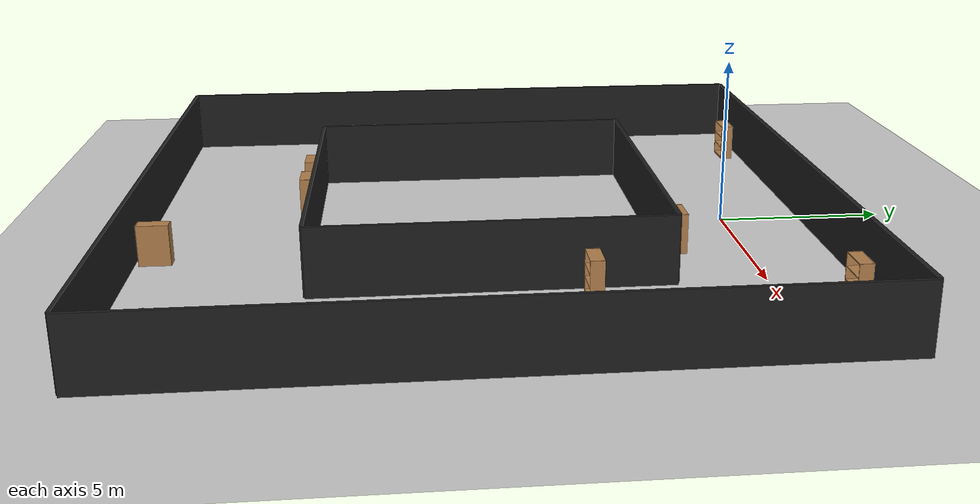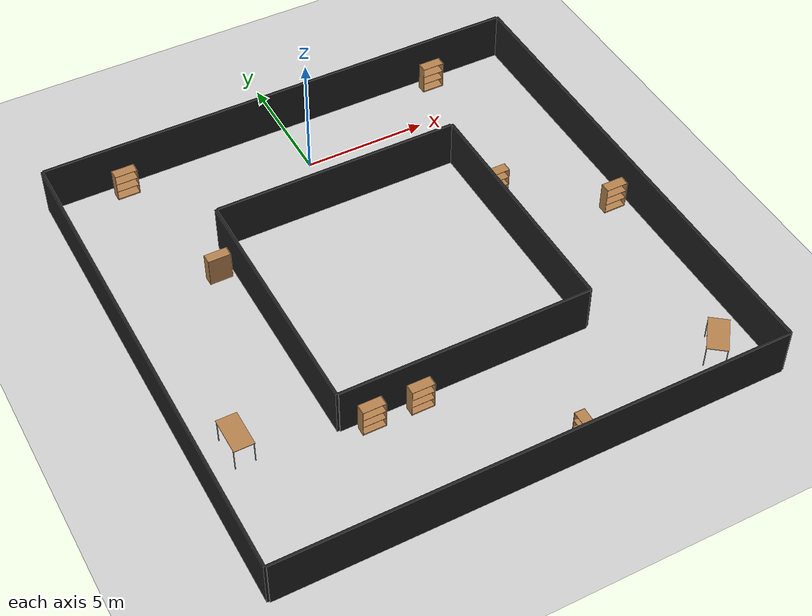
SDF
<sdf version="1.6">
 <world name="default">
  <light name="sun" type="directional">
   <pose>0 0 10 0 -0 0</pose>
   <diffuse>0.8 0.8 0.8 1</diffuse>
   <specular>0.2 0.2 0.2 1</specular>
   <attenuation>
    <range>1000</range>
    <constant>0.9</constant>
    <linear>0.01</linear>
    <quadratic>0.001</quadratic>
   </attenuation>
   <direction>-0.5 0.1 -0.9</direction>
  </light>
  <model name="ground_plane">
   <static>1</static>
   <link name="link">
    <collision name="collision">
     <geometry><plane><normal>0 0 1</normal><size>200 200</size></plane></geometry>
     <surface>
      <contact><collide_bitmask>65535</collide_bitmask></contact>
      <friction><ode><mu>100</mu><mu2>50</mu2></ode></friction>
     </surface>
    </collision>
    <visual name="visual">
     <cast_shadows>0</cast_shadows>
     <geometry><plane><normal>0 0 1</normal><size>200 200</size></plane></geometry>
     <material>
      <script><uri>file://media/materials/scripts/gazebo.material</uri><name>Gazebo/Grey</name></script>
     </material>
    </visual>
   </link>
  </model>
  <gravity>0 0 -9.8</gravity>
  <magnetic_field>6e-06 2.3e-05 -4.2e-05</magnetic_field>
  <atmosphere type="adiabatic"/>
  <physics name="default_physics" default="0" type="ode">
   <max_step_size>0.001</max_step_size>
   <real_time_factor>1</real_time_factor>
   <real_time_update_rate>1000</real_time_update_rate>
  </physics>
  <scene><ambient>0.4 0.4 0.4 1</ambient><background>0.7 0.7 0.7 1</background><shadows>1</shadows></scene>
  <spherical_coordinates>
   <surface_model>EARTH_WGS84</surface_model>
   <latitude_deg>0</latitude_deg>
   <longitude_deg>0</longitude_deg>
   <elevation>0</elevation>
   <heading_deg>0</heading_deg>
  </spherical_coordinates>
  <model name="wall_1">
   <pose>0 -2.5 1 0 0 0</pose>
   <link name="link">
    <collision name="collision"><geometry><box><size>10 0.1 2</size></box></geometry></collision>
    <visual name="visual">
     <geometry><box><size>10 0.1 2</size></box></geometry>
     <material>
      <script><name>Gazebo/Black</name><uri>file://media/materials/scripts/gazebo.material</uri></script>
     </material>
    </visual>
   </link>
  </model>
  <model name="wall_2">
   <pose>0 2.5 1 0 0 0</pose>
   <link name="link">
    <collision name="collision"><geometry><box><size>20 0.1 2</size></box></geometry></collision>
    <visual name="visual">
     <geometry><box><size>20 0.1 2</size></box></geometry>
     <material>
      <script><name>Gazebo/Black</name><uri>file://media/materials/scripts/gazebo.material</uri></script>
     </material>
    </visual>
   </link>
  </model>
  <model name="wall_3">
   <pose>-5.05 -7.5 1 0 0 1.57079632679</pose>
   <link name="link">
    <collision name="collision"><geometry><box><size>10 0.1 2</size></box></geometry></collision>
    <visual name="visual">
     <geometry><box><size>10 0.1 2</size></box></geometry>
     <material>
      <script><name>Gazebo/Black</name><uri>file://media/materials/scripts/gazebo.material</uri></script>
     </material>
    </visual>
   </link>
  </model>
  <model name="wall_4">
   <pose>-10.05 -7.5 1 0 0 1.57079632679</pose>
   <link name="link">
    <collision name="collision"><geometry><box><size>20 0.1 2</size></box></geometry></collision>
    <visual name="visual">
     <geometry><box><size>20 0.1 2</size></box></geometry>
     <material>
      <script><name>Gazebo/Black</name><uri>file://media/materials/scripts/gazebo.material</uri></script>
     </material>
    </visual>
   </link>
  </model>
  <model name="wall_5">
   <pose>0 -12.5 1 0 0 0</pose>
   <link name="link">
    <collision name="collision"><geometry><box><size>10 0.1 2</size></box></geometry></collision>
    <visual name="visual">
     <geometry><box><size>10 0.1 2</size></box></geometry>
     <material>
      <script><name>Gazebo/Black</name><uri>file://media/materials/scripts/gazebo.material</uri></script>
     </material>
    </visual>
   </link>
  </model>
  <model name="wall_6">
   <pose>0 -17.5 1 0 0 0</pose>
   <link name="link">
    <collision name="collision"><geometry><box><size>20 0.1 2</size></box></geometry></collision>
    <visual name="visual">
     <geometry><box><size>20 0.1 2</size></box></geometry>
     <material>
      <script><name>Gazebo/Black</name><uri>file://media/materials/scripts/gazebo.material</uri></script>
     </material>
    </visual>
   </link>
  </model>
  <model name="wall_7">
   <pose>5.05 -7.5 1 0 0 1.57079632679</pose>
   <link name="link">
    <collision name="collision"><geometry><box><size>10 0.1 2</size></box></geometry></collision>
    <visual name="visual">
     <geometry><box><size>10 0.1 2</size></box></geometry>
     <material>
      <script><name>Gazebo/Black</name><uri>file://media/materials/scripts/gazebo.material</uri></script>
     </material>
    </visual>
   </link>
  </model>
  <model name="wall_8">
   <pose>10.05 -7.5 1 0 0 1.57079632679</pose>
   <link name="link">
    <collision name="collision"><geometry><box><size>20 0.1 2</size></box></geometry></collision>
    <visual name="visual">
     <geometry><box><size>20 0.1 2</size></box></geometry>
     <material>
      <script><name>Gazebo/Black</name><uri>file://media/materials/scripts/gazebo.material</uri></script>
     </material>
    </visual>
   </link>
  </model>
  <model name="bookshelf">
   <static>1</static>
   <link name="link">
    <inertial><mass>1</mass></inertial>
    <collision name="back">
     <pose>0 0.005 0.6 0 -0 0</pose>
     <geometry><box><size>0.9 0.01 1.2</size></box></geometry>
    </collision>
    <visual name="visual1">
     <pose>0 0.005 0.6 0 -0 0</pose>
     <geometry><box><size>0.9 0.01 1.2</size></box></geometry>
     <material>
      <script><uri>file://media/materials/scripts/gazebo.material</uri><name>Gazebo/Wood</name></script>
     </material>
    </visual>
    <collision name="left_side">
     <pose>0.45 -0.195 0.6 0 -0 0</pose>
     <geometry><box><size>0.02 0.4 1.2</size></box></geometry>
    </collision>
    <visual name="visual2">
     <pose>0.45 -0.195 0.6 0 -0 0</pose>
     <geometry><box><size>0.02 0.4 1.2</size></box></geometry>
     <material>
      <script><uri>file://media/materials/scripts/gazebo.material</uri><name>Gazebo/Wood</name></script>
     </material>
    </visual>
    <collision name="right_side">
     <pose>-0.45 -0.195 0.6 0 -0 0</pose>
     <geometry><box><size>0.02 0.4 1.2</size></box></geometry>
    </collision>
    <visual name="visual3">
     <pose>-0.45 -0.195 0.6 0 -0 0</pose>
     <geometry><box><size>0.02 0.4 1.2</size></box></geometry>
     <material>
      <script><uri>file://media/materials/scripts/gazebo.material</uri><name>Gazebo/Wood</name></script>
     </material>
    </visual>
    <collision name="bottom">
     <pose>0 -0.195 0.03 0 -0 0</pose>
     <geometry><box><size>0.88 0.4 0.06</size></box></geometry>
    </collision>
    <visual name="visual4">
     <pose>0 -0.195 0.03 0 -0 0</pose>
     <geometry><box><size>0.88 0.4 0.06</size></box></geometry>
     <material>
      <script><uri>file://media/materials/scripts/gazebo.material</uri><name>Gazebo/Wood</name></script>
     </material>
    </visual>
    <collision name="top">
     <pose>0 -0.195 1.19 0 -0 0</pose>
     <geometry><box><size>0.88 0.4 0.02</size></box></geometry>
    </collision>
    <visual name="visual5">
     <pose>0 -0.195 1.19 0 -0 0</pose>
     <geometry><box><size>0.88 0.4 0.02</size></box></geometry>
     <material>
      <script><uri>file://media/materials/scripts/gazebo.material</uri><name>Gazebo/Wood</name></script>
     </material>
    </visual>
    <collision name="low_shelf">
     <pose>0 -0.195 0.43 0 -0 0</pose>
     <geometry><box><size>0.88 0.4 0.02</size></box></geometry>
    </collision>
    <visual name="visual6">
     <pose>0 -0.195 0.43 0 -0 0</pose>
     <geometry><box><size>0.88 0.4 0.02</size></box></geometry>
     <material>
      <script><uri>file://media/materials/scripts/gazebo.material</uri><name>Gazebo/Wood</name></script>
     </material>
    </visual>
    <collision name="high_shelf">
     <pose>0 -0.195 0.8 0 -0 0</pose>
     <geometry><box><size>0.88 0.4 0.02</size></box></geometry>
    </collision>
    <visual name="visual7">
     <pose>0 -0.195 0.8 0 -0 0</pose>
     <geometry><box><size>0.88 0.4 0.02</size></box></geometry>
     <material>
      <script><uri>file://media/materials/scripts/gazebo.material</uri><name>Gazebo/Wood</name></script>
     </material>
    </visual>
   </link>
   <pose>-7.03922 2.11059 0 0 -0 0</pose>
  </model>
  <model name="bookshelf_0">
   <static>1</static>
   <link name="link">
    <inertial><mass>1</mass></inertial>
    <collision name="back">
     <pose>0 0.005 0.6 0 -0 0</pose>
     <geometry><box><size>0.9 0.01 1.2</size></box></geometry>
    </collision>
    <visual name="visual1">
     <pose>0 0.005 0.6 0 -0 0</pose>
     <geometry><box><size>0.9 0.01 1.2</size></box></geometry>
     <material>
      <script><uri>file://media/materials/scripts/gazebo.material</uri><name>Gazebo/Wood</name></script>
     </material>
    </visual>
    <collision name="left_side">
     <pose>0.45 -0.195 0.6 0 -0 0</pose>
     <geometry><box><size>0.02 0.4 1.2</size></box></geometry>
    </collision>
    <visual name="visual2">
     <pose>0.45 -0.195 0.6 0 -0 0</pose>
     <geometry><box><size>0.02 0.4 1.2</size></box></geometry>
     <material>
      <script><uri>file://media/materials/scripts/gazebo.material</uri><name>Gazebo/Wood</name></script>
     </material>
    </visual>
    <collision name="right_side">
     <pose>-0.45 -0.195 0.6 0 -0 0</pose>
     <geometry><box><size>0.02 0.4 1.2</size></box></geometry>
    </collision>
    <visual name="visual3">
     <pose>-0.45 -0.195 0.6 0 -0 0</pose>
     <geometry><box><size>0.02 0.4 1.2</size></box></geometry>
     <material>
      <script><uri>file://media/materials/scripts/gazebo.material</uri><name>Gazebo/Wood</name></script>
     </material>
    </visual>
    <collision name="bottom">
     <pose>0 -0.195 0.03 0 -0 0</pose>
     <geometry><box><size>0.88 0.4 0.06</size></box></geometry>
    </collision>
    <visual name="visual4">
     <pose>0 -0.195 0.03 0 -0 0</pose>
     <geometry><box><size>0.88 0.4 0.06</size></box></geometry>
     <material>
      <script><uri>file://media/materials/scripts/gazebo.material</uri><name>Gazebo/Wood</name></script>
     </material>
    </visual>
    <collision name="top">
     <pose>0 -0.195 1.19 0 -0 0</pose>
     <geometry><box><size>0.88 0.4 0.02</size></box></geometry>
    </collision>
    <visual name="visual5">
     <pose>0 -0.195 1.19 0 -0 0</pose>
     <geometry><box><size>0.88 0.4 0.02</size></box></geometry>
     <material>
      <script><uri>file://media/materials/scripts/gazebo.material</uri><name>Gazebo/Wood</name></script>
     </material>
    </visual>
    <collision name="low_shelf">
     <pose>0 -0.195 0.43 0 -0 0</pose>
     <geometry><box><size>0.88 0.4 0.02</size></box></geometry>
    </collision>
    <visual name="visual6">
     <pose>0 -0.195 0.43 0 -0 0</pose>
     <geometry><box><size>0.88 0.4 0.02</size></box></geometry>
     <material>
      <script><uri>file://media/materials/scripts/gazebo.material</uri><name>Gazebo/Wood</name></script>
     </material>
    </visual>
    <collision name="high_shelf">
     <pose>0 -0.195 0.8 0 -0 0</pose>
     <geometry><box><size>0.88 0.4 0.02</size></box></geometry>
    </collision>
    <visual name="visual7">
     <pose>0 -0.195 0.8 0 -0 0</pose>
     <geometry><box><size>0.88 0.4 0.02</size></box></geometry>
     <material>
      <script><uri>file://media/materials/scripts/gazebo.material</uri><name>Gazebo/Wood</name></script>
     </material>
    </visual>
   </link>
   <pose>6.58916 2.1343 0 0 -0 0</pose>
  </model>
  <model name="bookshelf_1">
   <static>1</static>
   <link name="link">
    <inertial><mass>1</mass></inertial>
    <collision name="back">
     <pose>0 0.005 0.6 0 -0 0</pose>
     <geometry><box><size>0.9 0.01 1.2</size></box></geometry>
    </collision>
    <visual name="visual1">
     <pose>0 0.005 0.6 0 -0 0</pose>
     <geometry><box><size>0.9 0.01 1.2</size></box></geometry>
     <material>
      <script><uri>file://media/materials/scripts/gazebo.material</uri><name>Gazebo/Wood</name></script>
     </material>
    </visual>
    <collision name="left_side">
     <pose>0.45 -0.195 0.6 0 -0 0</pose>
     <geometry><box><size>0.02 0.4 1.2</size></box></geometry>
    </collision>
    <visual name="visual2">
     <pose>0.45 -0.195 0.6 0 -0 0</pose>
     <geometry><box><size>0.02 0.4 1.2</size></box></geometry>
     <material>
      <script><uri>file://media/materials/scripts/gazebo.material</uri><name>Gazebo/Wood</name></script>
     </material>
    </visual>
    <collision name="right_side">
     <pose>-0.45 -0.195 0.6 0 -0 0</pose>
     <geometry><box><size>0.02 0.4 1.2</size></box></geometry>
    </collision>
    <visual name="visual3">
     <pose>-0.45 -0.195 0.6 0 -0 0</pose>
     <geometry><box><size>0.02 0.4 1.2</size></box></geometry>
     <material>
      <script><uri>file://media/materials/scripts/gazebo.material</uri><name>Gazebo/Wood</name></script>
     </material>
    </visual>
    <collision name="bottom">
     <pose>0 -0.195 0.03 0 -0 0</pose>
     <geometry><box><size>0.88 0.4 0.06</size></box></geometry>
    </collision>
    <visual name="visual4">
     <pose>0 -0.195 0.03 0 -0 0</pose>
     <geometry><box><size>0.88 0.4 0.06</size></box></geometry>
     <material>
      <script><uri>file://media/materials/scripts/gazebo.material</uri><name>Gazebo/Wood</name></script>
     </material>
    </visual>
    <collision name="top">
     <pose>0 -0.195 1.19 0 -0 0</pose>
     <geometry><box><size>0.88 0.4 0.02</size></box></geometry>
    </collision>
    <visual name="visual5">
     <pose>0 -0.195 1.19 0 -0 0</pose>
     <geometry><box><size>0.88 0.4 0.02</size></box></geometry>
     <material>
      <script><uri>file://media/materials/scripts/gazebo.material</uri><name>Gazebo/Wood</name></script>
     </material>
    </visual>
    <collision name="low_shelf">
     <pose>0 -0.195 0.43 0 -0 0</pose>
     <geometry><box><size>0.88 0.4 0.02</size></box></geometry>
    </collision>
    <visual name="visual6">
     <pose>0 -0.195 0.43 0 -0 0</pose>
     <geometry><box><size>0.88 0.4 0.02</size></box></geometry>
     <material>
      <script><uri>file://media/materials/scripts/gazebo.material</uri><name>Gazebo/Wood</name></script>
     </material>
    </visual>
    <collision name="high_shelf">
     <pose>0 -0.195 0.8 0 -0 0</pose>
     <geometry><box><size>0.88 0.4 0.02</size></box></geometry>
    </collision>
    <visual name="visual7">
     <pose>0 -0.195 0.8 0 -0 0</pose>
     <geometry><box><size>0.88 0.4 0.02</size></box></geometry>
     <material>
      <script><uri>file://media/materials/scripts/gazebo.material</uri><name>Gazebo/Wood</name></script>
     </material>
    </visual>
   </link>
   <pose>2.3564 -2.11947 0 0 0 -3.14158</pose>
  </model>
  <model name="bookshelf_2">
   <static>1</static>
   <link name="link">
    <inertial><mass>1</mass></inertial>
    <collision name="back">
     <pose>0 0.005 0.6 0 -0 0</pose>
     <geometry><box><size>0.9 0.01 1.2</size></box></geometry>
    </collision>
    <visual name="visual1">
     <pose>0 0.005 0.6 0 -0 0</pose>
     <geometry><box><size>0.9 0.01 1.2</size></box></geometry>
     <material>
      <script><uri>file://media/materials/scripts/gazebo.material</uri><name>Gazebo/Wood</name></script>
     </material>
    </visual>
    <collision name="left_side">
     <pose>0.45 -0.195 0.6 0 -0 0</pose>
     <geometry><box><size>0.02 0.4 1.2</size></box></geometry>
    </collision>
    <visual name="visual2">
     <pose>0.45 -0.195 0.6 0 -0 0</pose>
     <geometry><box><size>0.02 0.4 1.2</size></box></geometry>
     <material>
      <script><uri>file://media/materials/scripts/gazebo.material</uri><name>Gazebo/Wood</name></script>
     </material>
    </visual>
    <collision name="right_side">
     <pose>-0.45 -0.195 0.6 0 -0 0</pose>
     <geometry><box><size>0.02 0.4 1.2</size></box></geometry>
    </collision>
    <visual name="visual3">
     <pose>-0.45 -0.195 0.6 0 -0 0</pose>
     <geometry><box><size>0.02 0.4 1.2</size></box></geometry>
     <material>
      <script><uri>file://media/materials/scripts/gazebo.material</uri><name>Gazebo/Wood</name></script>
     </material>
    </visual>
    <collision name="bottom">
     <pose>0 -0.195 0.03 0 -0 0</pose>
     <geometry><box><size>0.88 0.4 0.06</size></box></geometry>
    </collision>
    <visual name="visual4">
     <pose>0 -0.195 0.03 0 -0 0</pose>
     <geometry><box><size>0.88 0.4 0.06</size></box></geometry>
     <material>
      <script><uri>file://media/materials/scripts/gazebo.material</uri><name>Gazebo/Wood</name></script>
     </material>
    </visual>
    <collision name="top">
     <pose>0 -0.195 1.19 0 -0 0</pose>
     <geometry><box><size>0.88 0.4 0.02</size></box></geometry>
    </collision>
    <visual name="visual5">
     <pose>0 -0.195 1.19 0 -0 0</pose>
     <geometry><box><size>0.88 0.4 0.02</size></box></geometry>
     <material>
      <script><uri>file://media/materials/scripts/gazebo.material</uri><name>Gazebo/Wood</name></script>
     </material>
    </visual>
    <collision name="low_shelf">
     <pose>0 -0.195 0.43 0 -0 0</pose>
     <geometry><box><size>0.88 0.4 0.02</size></box></geometry>
    </collision>
    <visual name="visual6">
     <pose>0 -0.195 0.43 0 -0 0</pose>
     <geometry><box><size>0.88 0.4 0.02</size></box></geometry>
     <material>
      <script><uri>file://media/materials/scripts/gazebo.material</uri><name>Gazebo/Wood</name></script>
     </material>
    </visual>
    <collision name="high_shelf">
     <pose>0 -0.195 0.8 0 -0 0</pose>
     <geometry><box><size>0.88 0.4 0.02</size></box></geometry>
    </collision>
    <visual name="visual7">
     <pose>0 -0.195 0.8 0 -0 0</pose>
     <geometry><box><size>0.88 0.4 0.02</size></box></geometry>
     <material>
      <script><uri>file://media/materials/scripts/gazebo.material</uri><name>Gazebo/Wood</name></script>
     </material>
    </visual>
   </link>
   <pose>-5.69088 -4.12303 0 0 0 -3.13738</pose>
  </model>
  <model name="bookshelf_3">
   <static>1</static>
   <link name="link">
    <inertial><mass>1</mass></inertial>
    <collision name="back">
     <pose>0 0.005 0.6 0 -0 0</pose>
     <geometry><box><size>0.9 0.01 1.2</size></box></geometry>
    </collision>
    <visual name="visual1">
     <pose>0 0.005 0.6 0 -0 0</pose>
     <geometry><box><size>0.9 0.01 1.2</size></box></geometry>
     <material>
      <script><uri>file://media/materials/scripts/gazebo.material</uri><name>Gazebo/Wood</name></script>
     </material>
    </visual>
    <collision name="left_side">
     <pose>0.45 -0.195 0.6 0 -0 0</pose>
     <geometry><box><size>0.02 0.4 1.2</size></box></geometry>
    </collision>
    <visual name="visual2">
     <pose>0.45 -0.195 0.6 0 -0 0</pose>
     <geometry><box><size>0.02 0.4 1.2</size></box></geometry>
     <material>
      <script><uri>file://media/materials/scripts/gazebo.material</uri><name>Gazebo/Wood</name></script>
     </material>
    </visual>
    <collision name="right_side">
     <pose>-0.45 -0.195 0.6 0 -0 0</pose>
     <geometry><box><size>0.02 0.4 1.2</size></box></geometry>
    </collision>
    <visual name="visual3">
     <pose>-0.45 -0.195 0.6 0 -0 0</pose>
     <geometry><box><size>0.02 0.4 1.2</size></box></geometry>
     <material>
      <script><uri>file://media/materials/scripts/gazebo.material</uri><name>Gazebo/Wood</name></script>
     </material>
    </visual>
    <collision name="bottom">
     <pose>0 -0.195 0.03 0 -0 0</pose>
     <geometry><box><size>0.88 0.4 0.06</size></box></geometry>
    </collision>
    <visual name="visual4">
     <pose>0 -0.195 0.03 0 -0 0</pose>
     <geometry><box><size>0.88 0.4 0.06</size></box></geometry>
     <material>
      <script><uri>file://media/materials/scripts/gazebo.material</uri><name>Gazebo/Wood</name></script>
     </material>
    </visual>
    <collision name="top">
     <pose>0 -0.195 1.19 0 -0 0</pose>
     <geometry><box><size>0.88 0.4 0.02</size></box></geometry>
    </collision>
    <visual name="visual5">
     <pose>0 -0.195 1.19 0 -0 0</pose>
     <geometry><box><size>0.88 0.4 0.02</size></box></geometry>
     <material>
      <script><uri>file://media/materials/scripts/gazebo.material</uri><name>Gazebo/Wood</name></script>
     </material>
    </visual>
    <collision name="low_shelf">
     <pose>0 -0.195 0.43 0 -0 0</pose>
     <geometry><box><size>0.88 0.4 0.02</size></box></geometry>
    </collision>
    <visual name="visual6">
     <pose>0 -0.195 0.43 0 -0 0</pose>
     <geometry><box><size>0.88 0.4 0.02</size></box></geometry>
     <material>
      <script><uri>file://media/materials/scripts/gazebo.material</uri><name>Gazebo/Wood</name></script>
     </material>
    </visual>
    <collision name="high_shelf">
     <pose>0 -0.195 0.8 0 -0 0</pose>
     <geometry><box><size>0.88 0.4 0.02</size></box></geometry>
    </collision>
    <visual name="visual7">
     <pose>0 -0.195 0.8 0 -0 0</pose>
     <geometry><box><size>0.88 0.4 0.02</size></box></geometry>
     <material>
      <script><uri>file://media/materials/scripts/gazebo.material</uri><name>Gazebo/Wood</name></script>
     </material>
    </visual>
   </link>
   <pose>-3.93116 -12.6872 0 0 -0 0</pose>
  </model>
  <model name="bookshelf_4">
   <static>1</static>
   <link name="link">
    <inertial><mass>1</mass></inertial>
    <collision name="back">
     <pose>0 0.005 0.6 0 -0 0</pose>
     <geometry><box><size>0.9 0.01 1.2</size></box></geometry>
    </collision>
    <visual name="visual1">
     <pose>0 0.005 0.6 0 -0 0</pose>
     <geometry><box><size>0.9 0.01 1.2</size></box></geometry>
     <material>
      <script><uri>file://media/materials/scripts/gazebo.material</uri><name>Gazebo/Wood</name></script>
     </material>
    </visual>
    <collision name="left_side">
     <pose>0.45 -0.195 0.6 0 -0 0</pose>
     <geometry><box><size>0.02 0.4 1.2</size></box></geometry>
    </collision>
    <visual name="visual2">
     <pose>0.45 -0.195 0.6 0 -0 0</pose>
     <geometry><box><size>0.02 0.4 1.2</size></box></geometry>
     <material>
      <script><uri>file://media/materials/scripts/gazebo.material</uri><name>Gazebo/Wood</name></script>
     </material>
    </visual>
    <collision name="right_side">
     <pose>-0.45 -0.195 0.6 0 -0 0</pose>
     <geometry><box><size>0.02 0.4 1.2</size></box></geometry>
    </collision>
    <visual name="visual3">
     <pose>-0.45 -0.195 0.6 0 -0 0</pose>
     <geometry><box><size>0.02 0.4 1.2</size></box></geometry>
     <material>
      <script><uri>file://media/materials/scripts/gazebo.material</uri><name>Gazebo/Wood</name></script>
     </material>
    </visual>
    <collision name="bottom">
     <pose>0 -0.195 0.03 0 -0 0</pose>
     <geometry><box><size>0.88 0.4 0.06</size></box></geometry>
    </collision>
    <visual name="visual4">
     <pose>0 -0.195 0.03 0 -0 0</pose>
     <geometry><box><size>0.88 0.4 0.06</size></box></geometry>
     <material>
      <script><uri>file://media/materials/scripts/gazebo.material</uri><name>Gazebo/Wood</name></script>
     </material>
    </visual>
    <collision name="top">
     <pose>0 -0.195 1.19 0 -0 0</pose>
     <geometry><box><size>0.88 0.4 0.02</size></box></geometry>
    </collision>
    <visual name="visual5">
     <pose>0 -0.195 1.19 0 -0 0</pose>
     <geometry><box><size>0.88 0.4 0.02</size></box></geometry>
     <material>
      <script><uri>file://media/materials/scripts/gazebo.material</uri><name>Gazebo/Wood</name></script>
     </material>
    </visual>
    <collision name="low_shelf">
     <pose>0 -0.195 0.43 0 -0 0</pose>
     <geometry><box><size>0.88 0.4 0.02</size></box></geometry>
    </collision>
    <visual name="visual6">
     <pose>0 -0.195 0.43 0 -0 0</pose>
     <geometry><box><size>0.88 0.4 0.02</size></box></geometry>
     <material>
      <script><uri>file://media/materials/scripts/gazebo.material</uri><name>Gazebo/Wood</name></script>
     </material>
    </visual>
    <collision name="high_shelf">
     <pose>0 -0.195 0.8 0 -0 0</pose>
     <geometry><box><size>0.88 0.4 0.02</size></box></geometry>
    </collision>
    <visual name="visual7">
     <pose>0 -0.195 0.8 0 -0 0</pose>
     <geometry><box><size>0.88 0.4 0.02</size></box></geometry>
     <material>
      <script><uri>file://media/materials/scripts/gazebo.material</uri><name>Gazebo/Wood</name></script>
     </material>
    </visual>
   </link>
   <pose>-2.04353 -12.7121 0 0 -0 0</pose>
  </model>
  <model name="bookshelf_5">
   <static>1</static>
   <link name="link">
    <inertial><mass>1</mass></inertial>
    <collision name="back">
     <pose>0 0.005 0.6 0 -0 0</pose>
     <geometry><box><size>0.9 0.01 1.2</size></box></geometry>
    </collision>
    <visual name="visual1">
     <pose>0 0.005 0.6 0 -0 0</pose>
     <geometry><box><size>0.9 0.01 1.2</size></box></geometry>
     <material>
      <script><uri>file://media/materials/scripts/gazebo.material</uri><name>Gazebo/Wood</name></script>
     </material>
    </visual>
    <collision name="left_side">
     <pose>0.45 -0.195 0.6 0 -0 0</pose>
     <geometry><box><size>0.02 0.4 1.2</size></box></geometry>
    </collision>
    <visual name="visual2">
     <pose>0.45 -0.195 0.6 0 -0 0</pose>
     <geometry><box><size>0.02 0.4 1.2</size></box></geometry>
     <material>
      <script><uri>file://media/materials/scripts/gazebo.material</uri><name>Gazebo/Wood</name></script>
     </material>
    </visual>
    <collision name="right_side">
     <pose>-0.45 -0.195 0.6 0 -0 0</pose>
     <geometry><box><size>0.02 0.4 1.2</size></box></geometry>
    </collision>
    <visual name="visual3">
     <pose>-0.45 -0.195 0.6 0 -0 0</pose>
     <geometry><box><size>0.02 0.4 1.2</size></box></geometry>
     <material>
      <script><uri>file://media/materials/scripts/gazebo.material</uri><name>Gazebo/Wood</name></script>
     </material>
    </visual>
    <collision name="bottom">
     <pose>0 -0.195 0.03 0 -0 0</pose>
     <geometry><box><size>0.88 0.4 0.06</size></box></geometry>
    </collision>
    <visual name="visual4">
     <pose>0 -0.195 0.03 0 -0 0</pose>
     <geometry><box><size>0.88 0.4 0.06</size></box></geometry>
     <material>
      <script><uri>file://media/materials/scripts/gazebo.material</uri><name>Gazebo/Wood</name></script>
     </material>
    </visual>
    <collision name="top">
     <pose>0 -0.195 1.19 0 -0 0</pose>
     <geometry><box><size>0.88 0.4 0.02</size></box></geometry>
    </collision>
    <visual name="visual5">
     <pose>0 -0.195 1.19 0 -0 0</pose>
     <geometry><box><size>0.88 0.4 0.02</size></box></geometry>
     <material>
      <script><uri>file://media/materials/scripts/gazebo.material</uri><name>Gazebo/Wood</name></script>
     </material>
    </visual>
    <collision name="low_shelf">
     <pose>0 -0.195 0.43 0 -0 0</pose>
     <geometry><box><size>0.88 0.4 0.02</size></box></geometry>
    </collision>
    <visual name="visual6">
     <pose>0 -0.195 0.43 0 -0 0</pose>
     <geometry><box><size>0.88 0.4 0.02</size></box></geometry>
     <material>
      <script><uri>file://media/materials/scripts/gazebo.material</uri><name>Gazebo/Wood</name></script>
     </material>
    </visual>
    <collision name="high_shelf">
     <pose>0 -0.195 0.8 0 -0 0</pose>
     <geometry><box><size>0.88 0.4 0.02</size></box></geometry>
    </collision>
    <visual name="visual7">
     <pose>0 -0.195 0.8 0 -0 0</pose>
     <geometry><box><size>0.88 0.4 0.02</size></box></geometry>
     <material>
      <script><uri>file://media/materials/scripts/gazebo.material</uri><name>Gazebo/Wood</name></script>
     </material>
    </visual>
   </link>
   <pose>9.31358 -7.49765 0 0 -0 0</pose>
  </model>
  <model name="bookshelf_6">
   <static>1</static>
   <link name="link">
    <inertial><mass>1</mass></inertial>
    <collision name="back">
     <pose>0 0.005 0.6 0 -0 0</pose>
     <geometry><box><size>0.9 0.01 1.2</size></box></geometry>
    </collision>
    <visual name="visual1">
     <pose>0 0.005 0.6 0 -0 0</pose>
     <geometry><box><size>0.9 0.01 1.2</size></box></geometry>
     <material>
      <script><uri>file://media/materials/scripts/gazebo.material</uri><name>Gazebo/Wood</name></script>
     </material>
    </visual>
    <collision name="left_side">
     <pose>0.45 -0.195 0.6 0 -0 0</pose>
     <geometry><box><size>0.02 0.4 1.2</size></box></geometry>
    </collision>
    <visual name="visual2">
     <pose>0.45 -0.195 0.6 0 -0 0</pose>
     <geometry><box><size>0.02 0.4 1.2</size></box></geometry>
     <material>
      <script><uri>file://media/materials/scripts/gazebo.material</uri><name>Gazebo/Wood</name></script>
     </material>
    </visual>
    <collision name="right_side">
     <pose>-0.45 -0.195 0.6 0 -0 0</pose>
     <geometry><box><size>0.02 0.4 1.2</size></box></geometry>
    </collision>
    <visual name="visual3">
     <pose>-0.45 -0.195 0.6 0 -0 0</pose>
     <geometry><box><size>0.02 0.4 1.2</size></box></geometry>
     <material>
      <script><uri>file://media/materials/scripts/gazebo.material</uri><name>Gazebo/Wood</name></script>
     </material>
    </visual>
    <collision name="bottom">
     <pose>0 -0.195 0.03 0 -0 0</pose>
     <geometry><box><size>0.88 0.4 0.06</size></box></geometry>
    </collision>
    <visual name="visual4">
     <pose>0 -0.195 0.03 0 -0 0</pose>
     <geometry><box><size>0.88 0.4 0.06</size></box></geometry>
     <material>
      <script><uri>file://media/materials/scripts/gazebo.material</uri><name>Gazebo/Wood</name></script>
     </material>
    </visual>
    <collision name="top">
     <pose>0 -0.195 1.19 0 -0 0</pose>
     <geometry><box><size>0.88 0.4 0.02</size></box></geometry>
    </collision>
    <visual name="visual5">
     <pose>0 -0.195 1.19 0 -0 0</pose>
     <geometry><box><size>0.88 0.4 0.02</size></box></geometry>
     <material>
      <script><uri>file://media/materials/scripts/gazebo.material</uri><name>Gazebo/Wood</name></script>
     </material>
    </visual>
    <collision name="low_shelf">
     <pose>0 -0.195 0.43 0 -0 0</pose>
     <geometry><box><size>0.88 0.4 0.02</size></box></geometry>
    </collision>
    <visual name="visual6">
     <pose>0 -0.195 0.43 0 -0 0</pose>
     <geometry><box><size>0.88 0.4 0.02</size></box></geometry>
     <material>
      <script><uri>file://media/materials/scripts/gazebo.material</uri><name>Gazebo/Wood</name></script>
     </material>
    </visual>
    <collision name="high_shelf">
     <pose>0 -0.195 0.8 0 -0 0</pose>
     <geometry><box><size>0.88 0.4 0.02</size></box></geometry>
    </collision>
    <visual name="visual7">
     <pose>0 -0.195 0.8 0 -0 0</pose>
     <geometry><box><size>0.88 0.4 0.02</size></box></geometry>
     <material>
      <script><uri>file://media/materials/scripts/gazebo.material</uri><name>Gazebo/Wood</name></script>
     </material>
    </visual>
   </link>
   <pose>5.71046 -4.69681 0 0 -0 0</pose>
  </model>
  <model name="table">
   <static>1</static>
   <link name="link">
    <collision name="surface">
     <pose>0 0 1 0 -0 0</pose>
     <geometry><box><size>1.5 0.8 0.03</size></box></geometry>
     <surface><friction><ode><mu>0.6</mu><mu2>0.6</mu2></ode></friction></surface>
    </collision>
    <visual name="visual1">
     <pose>0 0 1 0 -0 0</pose>
     <geometry><box><size>1.5 0.8 0.03</size></box></geometry>
     <material>
      <script><uri>file://media/materials/scripts/gazebo.material</uri><name>Gazebo/Wood</name></script>
     </material>
    </visual>
    <collision name="front_left_leg">
     <pose>0.68 0.38 0.5 0 -0 0</pose>
     <geometry><cylinder><radius>0.02</radius><length>1</length></cylinder></geometry>
    </collision>
    <visual name="front_left_leg">
     <pose>0.68 0.38 0.5 0 -0 0</pose>
     <geometry><cylinder><radius>0.02</radius><length>1</length></cylinder></geometry>
     <material>
      <script><uri>file://media/materials/scripts/gazebo.material</uri><name>Gazebo/Grey</name></script>
     </material>
    </visual>
    <collision name="front_right_leg">
     <pose>0.68 -0.38 0.5 0 -0 0</pose>
     <geometry><cylinder><radius>0.02</radius><length>1</length></cylinder></geometry>
    </collision>
    <visual name="front_right_leg">
     <pose>0.68 -0.38 0.5 0 -0 0</pose>
     <geometry><cylinder><radius>0.02</radius><length>1</length></cylinder></geometry>
     <material>
      <script><uri>file://media/materials/scripts/gazebo.material</uri><name>Gazebo/Grey</name></script>
     </material>
    </visual>
    <collision name="back_right_leg">
     <pose>-0.68 -0.38 0.5 0 -0 0</pose>
     <geometry><cylinder><radius>0.02</radius><length>1</length></cylinder></geometry>
    </collision>
    <visual name="back_right_leg">
     <pose>-0.68 -0.38 0.5 0 -0 0</pose>
     <geometry><cylinder><radius>0.02</radius><length>1</length></cylinder></geometry>
     <material>
      <script><uri>file://media/materials/scripts/gazebo.material</uri><name>Gazebo/Grey</name></script>
     </material>
    </visual>
    <collision name="back_left_leg">
     <pose>-0.68 0.38 0.5 0 -0 0</pose>
     <geometry><cylinder><radius>0.02</radius><length>1</length></cylinder></geometry>
    </collision>
    <visual name="back_left_leg">
     <pose>-0.68 0.38 0.5 0 -0 0</pose>
     <geometry><cylinder><radius>0.02</radius><length>1</length></cylinder></geometry>
     <material>
      <script><uri>file://media/materials/scripts/gazebo.material</uri><name>Gazebo/Grey</name></script>
     </material>
    </visual>
   </link>
   <pose>8.42059 -15.7127 0 0 -0 0.910321</pose>
  </model>
  <model name="table_0">
   <static>1</static>
   <link name="link">
    <collision name="surface">
     <pose>0 0 1 0 -0 0</pose>
     <geometry><box><size>1.5 0.8 0.03</size></box></geometry>
     <surface><friction><ode><mu>0.6</mu><mu2>0.6</mu2></ode></friction></surface>
    </collision>
    <visual name="visual1">
     <pose>0 0 1 0 -0 0</pose>
     <geometry><box><size>1.5 0.8 0.03</size></box></geometry>
     <material>
      <script><uri>file://media/materials/scripts/gazebo.material</uri><name>Gazebo/Wood</name></script>
     </material>
    </visual>
    <collision name="front_left_leg">
     <pose>0.68 0.38 0.5 0 -0 0</pose>
     <geometry><cylinder><radius>0.02</radius><length>1</length></cylinder></geometry>
    </collision>
    <visual name="front_left_leg">
     <pose>0.68 0.38 0.5 0 -0 0</pose>
     <geometry><cylinder><radius>0.02</radius><length>1</length></cylinder></geometry>
     <material>
      <script><uri>file://media/materials/scripts/gazebo.material</uri><name>Gazebo/Grey</name></script>
     </material>
    </visual>
    <collision name="front_right_leg">
     <pose>0.68 -0.38 0.5 0 -0 0</pose>
     <geometry><cylinder><radius>0.02</radius><length>1</length></cylinder></geometry>
    </collision>
    <visual name="front_right_leg">
     <pose>0.68 -0.38 0.5 0 -0 0</pose>
     <geometry><cylinder><radius>0.02</radius><length>1</length></cylinder></geometry>
     <material>
      <script><uri>file://media/materials/scripts/gazebo.material</uri><name>Gazebo/Grey</name></script>
     </material>
    </visual>
    <collision name="back_right_leg">
     <pose>-0.68 -0.38 0.5 0 -0 0</pose>
     <geometry><cylinder><radius>0.02</radius><length>1</length></cylinder></geometry>
    </collision>
    <visual name="back_right_leg">
     <pose>-0.68 -0.38 0.5 0 -0 0</pose>
     <geometry><cylinder><radius>0.02</radius><length>1</length></cylinder></geometry>
     <material>
      <script><uri>file://media/materials/scripts/gazebo.material</uri><name>Gazebo/Grey</name></script>
     </material>
    </visual>
    <collision name="back_left_leg">
     <pose>-0.68 0.38 0.5 0 -0 0</pose>
     <geometry><cylinder><radius>0.02</radius><length>1</length></cylinder></geometry>
    </collision>
    <visual name="back_left_leg">
     <pose>-0.68 0.38 0.5 0 -0 0</pose>
     <geometry><cylinder><radius>0.02</radius><length>1</length></cylinder></geometry>
     <material>
      <script><uri>file://media/materials/scripts/gazebo.material</uri><name>Gazebo/Grey</name></script>
     </material>
    </visual>
   </link>
   <pose>-8.44982 -11.605 0 0 0 -1.56758</pose>
  </model>
  <model name="bookshelf_7">
   <static>1</static>
   <link name="link">
    <inertial><mass>1</mass></inertial>
    <collision name="back">
     <pose>0 0.005 0.6 0 -0 0</pose>
     <geometry><box><size>0.9 0.01 1.2</size></box></geometry>
    </collision>
    <visual name="visual1">
     <pose>0 0.005 0.6 0 -0 0</pose>
     <geometry><box><size>0.9 0.01 1.2</size></box></geometry>
     <material>
      <script><uri>file://media/materials/scripts/gazebo.material</uri><name>Gazebo/Wood</name></script>
     </material>
    </visual>
    <collision name="left_side">
     <pose>0.45 -0.195 0.6 0 -0 0</pose>
     <geometry><box><size>0.02 0.4 1.2</size></box></geometry>
    </collision>
    <visual name="visual2">
     <pose>0.45 -0.195 0.6 0 -0 0</pose>
     <geometry><box><size>0.02 0.4 1.2</size></box></geometry>
     <material>
      <script><uri>file://media/materials/scripts/gazebo.material</uri><name>Gazebo/Wood</name></script>
     </material>
    </visual>
    <collision name="right_side">
     <pose>-0.45 -0.195 0.6 0 -0 0</pose>
     <geometry><box><size>0.02 0.4 1.2</size></box></geometry>
    </collision>
    <visual name="visual3">
     <pose>-0.45 -0.195 0.6 0 -0 0</pose>
     <geometry><box><size>0.02 0.4 1.2</size></box></geometry>
     <material>
      <script><uri>file://media/materials/scripts/gazebo.material</uri><name>Gazebo/Wood</name></script>
     </material>
    </visual>
    <collision name="bottom">
     <pose>0 -0.195 0.03 0 -0 0</pose>
     <geometry><box><size>0.88 0.4 0.06</size></box></geometry>
    </collision>
    <visual name="visual4">
     <pose>0 -0.195 0.03 0 -0 0</pose>
     <geometry><box><size>0.88 0.4 0.06</size></box></geometry>
     <material>
      <script><uri>file://media/materials/scripts/gazebo.material</uri><name>Gazebo/Wood</name></script>
     </material>
    </visual>
    <collision name="top">
     <pose>0 -0.195 1.19 0 -0 0</pose>
     <geometry><box><size>0.88 0.4 0.02</size></box></geometry>
    </collision>
    <visual name="visual5">
     <pose>0 -0.195 1.19 0 -0 0</pose>
     <geometry><box><size>0.88 0.4 0.02</size></box></geometry>
     <material>
      <script><uri>file://media/materials/scripts/gazebo.material</uri><name>Gazebo/Wood</name></script>
     </material>
    </visual>
    <collision name="low_shelf">
     <pose>0 -0.195 0.43 0 -0 0</pose>
     <geometry><box><size>0.88 0.4 0.02</size></box></geometry>
    </collision>
    <visual name="visual6">
     <pose>0 -0.195 0.43 0 -0 0</pose>
     <geometry><box><size>0.88 0.4 0.02</size></box></geometry>
     <material>
      <script><uri>file://media/materials/scripts/gazebo.material</uri><name>Gazebo/Wood</name></script>
     </material>
    </visual>
    <collision name="high_shelf">
     <pose>0 -0.195 0.8 0 -0 0</pose>
     <geometry><box><size>0.88 0.4 0.02</size></box></geometry>
    </collision>
    <visual name="visual7">
     <pose>0 -0.195 0.8 0 -0 0</pose>
     <geometry><box><size>0.88 0.4 0.02</size></box></geometry>
     <material>
      <script><uri>file://media/materials/scripts/gazebo.material</uri><name>Gazebo/Wood</name></script>
     </material>
    </visual>
   </link>
   <pose>2.31647 -16.8738 0 0 0 -1.582</pose>
  </model>
 </world>
</sdf>
